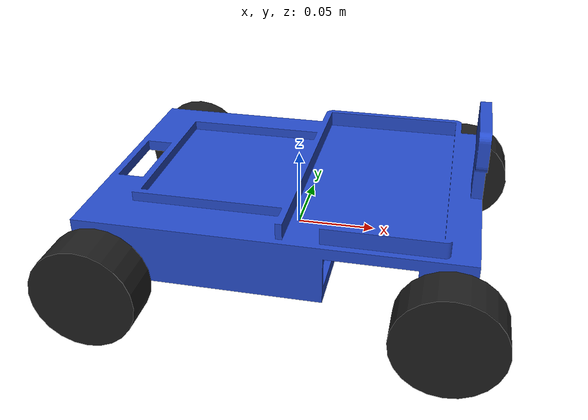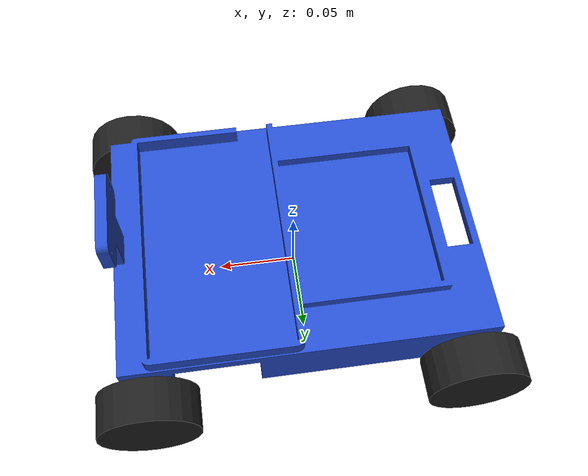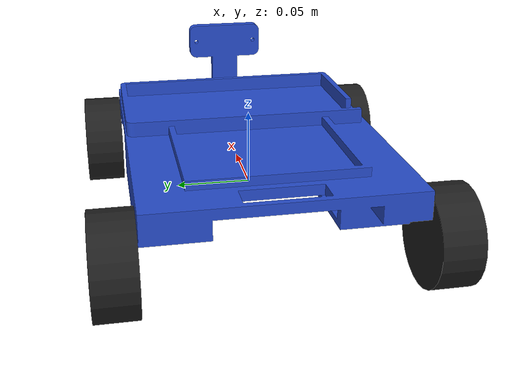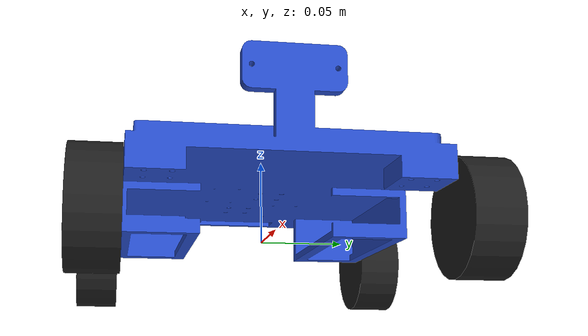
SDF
<sdf version='1.11'>
  <model name='ana_robot'>
    <link name='base_link'>
      <inertial>
        <pose>0.11650000000000001 0.083500000000000005 0.029499999999999998 0 0 0</pose>
        <mass>0.5</mass>
        <inertia>
          <ixx>0.001204166666666667</ixx>
          <ixy>0</ixy>
          <ixz>0</ixz>
          <iyy>0.0023010416666666661</iyy>
          <iyz>0</iyz>
          <izz>0.003505208333333332</izz>
        </inertia>
      </inertial>
      <collision name='base_link_fixed_joint_lump__chassis_collision'>
        <pose>0.11650000000000001 0.083500000000000005 0.029499999999999998 0 0 0</pose>
        <geometry>
          <mesh>
            <scale>0.001 0.001 0.001</scale>
            <uri>model://ana/meshes/ana_chassis.stl</uri>
          </mesh>
        </geometry>
        <surface>
          <contact>
            <ode/>
          </contact>
          <friction>
            <ode/>
          </friction>
        </surface>
      </collision>
      <visual name='base_link_fixed_joint_lump__chassis_visual'>
        <pose>0.11650000000000001 0.083500000000000005 0.029499999999999998 0 0 0</pose>
        <geometry>
          <mesh>
            <scale>0.001 0.001 0.001</scale>
            <uri>model://ana/meshes/ana_chassis.stl</uri>
          </mesh>
        </geometry>
        <material>
          <script>
            <name>Gazebo/Blue</name>
            <uri>file://media/materials/scripts/gazebo.material</uri>
          </script>
          <diffuse>0.25 0.25 1 1</diffuse>
          <ambient>0.25 0.25 1 1</ambient>
        </material>
      </visual>
    </link>
    <joint name='back_left_wheel_joint' type='revolute'>
      <pose relative_to='base_link'>-0.104 0.097500000000000003 0 -1.5708 0 0</pose>
      <parent>base_link</parent>
      <child>back_left_wheel</child>
      <axis>
        <xyz>0 0 1</xyz>
        <limit>
          <lower>-inf</lower>
          <upper>inf</upper>
        </limit>
        <dynamics>
          <spring_reference>0</spring_reference>
          <spring_stiffness>0</spring_stiffness>
        </dynamics>
      </axis>
    </joint>
    <link name='back_left_wheel'>
      <pose relative_to='back_left_wheel_joint'>0 0 0 0 0 0</pose>
      <inertial>
        <pose>0 0 0 0 0 0</pose>
        <mass>0.10000000000000001</mass>
        <inertia>
          <ixx>3.248125e-05</ixx>
          <ixy>0</ixy>
          <ixz>0</ixz>
          <iyy>3.248125e-05</iyy>
          <iyz>0</iyz>
          <izz>5.281250000000001e-05</izz>
        </inertia>
      </inertial>
      <collision name='back_left_wheel_collision'>
        <pose>0 0 0 0 0 0</pose>
        <geometry>
          <sphere>
            <radius>0.032500000000000001</radius>
          </sphere>
        </geometry>
        <surface>
          <contact>
            <ode/>
          </contact>
          <friction>
            <ode/>
          </friction>
        </surface>
      </collision>
      <visual name='back_left_wheel_visual'>
        <pose>0 0 0 0 0 0</pose>
        <geometry>
          <cylinder>
            <length>0.027</length>
            <radius>0.032500000000000001</radius>
          </cylinder>
        </geometry>
        <material>
          <script>
            <name>Gazebo/Black</name>
            <uri>file://media/materials/scripts/gazebo.material</uri>
          </script>
          <diffuse>0 0 0 1</diffuse>
          <ambient>0 0 0 1</ambient>
        </material>
      </visual>
    </link>
    <joint name='back_right_wheel_joint' type='revolute'>
      <pose relative_to='base_link'>-0.104 -0.10050000000000001 0 1.5708 0 0</pose>
      <parent>base_link</parent>
      <child>back_right_wheel</child>
      <axis>
        <xyz>0 0 -1</xyz>
        <limit>
          <lower>-inf</lower>
          <upper>inf</upper>
        </limit>
        <dynamics>
          <spring_reference>0</spring_reference>
          <spring_stiffness>0</spring_stiffness>
        </dynamics>
      </axis>
    </joint>
    <link name='back_right_wheel'>
      <pose relative_to='back_right_wheel_joint'>0 0 0 0 0 0</pose>
      <inertial>
        <pose>0 0 0 0 0 0</pose>
        <mass>0.10000000000000001</mass>
        <inertia>
          <ixx>3.248125e-05</ixx>
          <ixy>0</ixy>
          <ixz>0</ixz>
          <iyy>3.248125e-05</iyy>
          <iyz>0</iyz>
          <izz>5.281250000000001e-05</izz>
        </inertia>
      </inertial>
      <collision name='back_right_wheel_collision'>
        <pose>0 0 0 0 0 0</pose>
        <geometry>
          <sphere>
            <radius>0.032500000000000001</radius>
          </sphere>
        </geometry>
        <surface>
          <contact>
            <ode/>
          </contact>
          <friction>
            <ode/>
          </friction>
        </surface>
      </collision>
      <visual name='back_right_wheel_visual'>
        <pose>0 0 0 0 0 0</pose>
        <geometry>
          <cylinder>
            <length>0.027</length>
            <radius>0.032500000000000001</radius>
          </cylinder>
        </geometry>
        <material>
          <script>
            <name>Gazebo/Black</name>
            <uri>file://media/materials/scripts/gazebo.material</uri>
          </script>
          <diffuse>0 0 0 1</diffuse>
          <ambient>0 0 0 1</ambient>
        </material>
      </visual>
    </link>
    <joint name='front_left_wheel_joint' type='revolute'>
      <pose relative_to='base_link'>0.104 0.097500000000000003 0 -1.5708 0 0</pose>
      <parent>base_link</parent>
      <child>front_left_wheel</child>
      <axis>
        <xyz>0 0 1</xyz>
        <limit>
          <lower>-inf</lower>
          <upper>inf</upper>
        </limit>
        <dynamics>
          <spring_reference>0</spring_reference>
          <spring_stiffness>0</spring_stiffness>
        </dynamics>
      </axis>
    </joint>
    <link name='front_left_wheel'>
      <pose relative_to='front_left_wheel_joint'>0 0 0 0 0 0</pose>
      <inertial>
        <pose>0 0 0 0 0 0</pose>
        <mass>0.10000000000000001</mass>
        <inertia>
          <ixx>3.248125e-05</ixx>
          <ixy>0</ixy>
          <ixz>0</ixz>
          <iyy>3.248125e-05</iyy>
          <iyz>0</iyz>
          <izz>5.281250000000001e-05</izz>
        </inertia>
      </inertial>
      <collision name='front_left_wheel_collision'>
        <pose>0 0 0 0 0 0</pose>
        <geometry>
          <sphere>
            <radius>0.032500000000000001</radius>
          </sphere>
        </geometry>
        <surface>
          <contact>
            <ode/>
          </contact>
          <friction>
            <ode/>
          </friction>
        </surface>
      </collision>
      <visual name='front_left_wheel_visual'>
        <pose>0 0 0 0 0 0</pose>
        <geometry>
          <cylinder>
            <length>0.027</length>
            <radius>0.032500000000000001</radius>
          </cylinder>
        </geometry>
        <material>
          <script>
            <name>Gazebo/Black</name>
            <uri>file://media/materials/scripts/gazebo.material</uri>
          </script>
          <diffuse>0 0 0 1</diffuse>
          <ambient>0 0 0 1</ambient>
        </material>
      </visual>
    </link>
    <joint name='front_right_wheel_joint' type='revolute'>
      <pose relative_to='base_link'>0.104 -0.10050000000000001 0 1.5708 0 0</pose>
      <parent>base_link</parent>
      <child>front_right_wheel</child>
      <axis>
        <xyz>0 0 -1</xyz>
        <limit>
          <lower>-inf</lower>
          <upper>inf</upper>
        </limit>
        <dynamics>
          <spring_reference>0</spring_reference>
          <spring_stiffness>0</spring_stiffness>
        </dynamics>
      </axis>
    </joint>
    <link name='front_right_wheel'>
      <pose relative_to='front_right_wheel_joint'>0 0 0 0 0 0</pose>
      <inertial>
        <pose>0 0 0 0 0 0</pose>
        <mass>0.10000000000000001</mass>
        <inertia>
          <ixx>3.248125e-05</ixx>
          <ixy>0</ixy>
          <ixz>0</ixz>
          <iyy>3.248125e-05</iyy>
          <iyz>0</iyz>
          <izz>5.281250000000001e-05</izz>
        </inertia>
      </inertial>
      <collision name='front_right_wheel_collision'>
        <pose>0 0 0 0 0 0</pose>
        <geometry>
          <sphere>
            <radius>0.032500000000000001</radius>
          </sphere>
        </geometry>
        <surface>
          <contact>
            <ode/>
          </contact>
          <friction>
            <ode/>
          </friction>
        </surface>
      </collision>
      <visual name='front_right_wheel_visual'>
        <pose>0 0 0 0 0 0</pose>
        <geometry>
          <cylinder>
            <length>0.027</length>
            <radius>0.032500000000000001</radius>
          </cylinder>
        </geometry>
        <material>
          <script>
            <name>Gazebo/Black</name>
            <uri>file://media/materials/scripts/gazebo.material</uri>
          </script>
          <diffuse>0 0 0 1</diffuse>
          <ambient>0 0 0 1</ambient>
        </material>
      </visual>
    </link>
    <frame name='chassis_joint' attached_to='base_link'>
      <pose>-0.001 0 0 0 0 0</pose>
    </frame>
    <frame name='chassis' attached_to='chassis_joint'>
      <pose>0 0 0 0 0 0</pose>
    </frame>
  </model>
</sdf>
